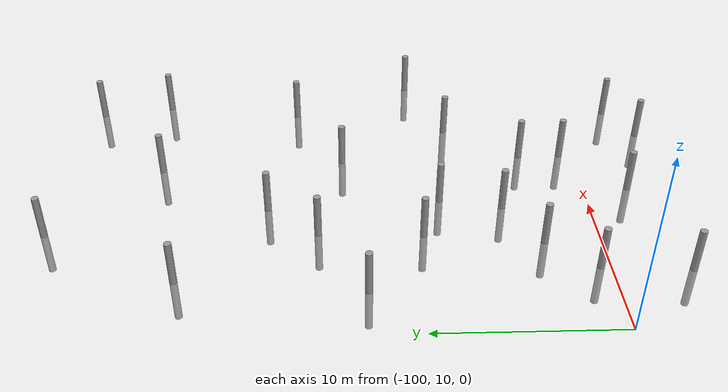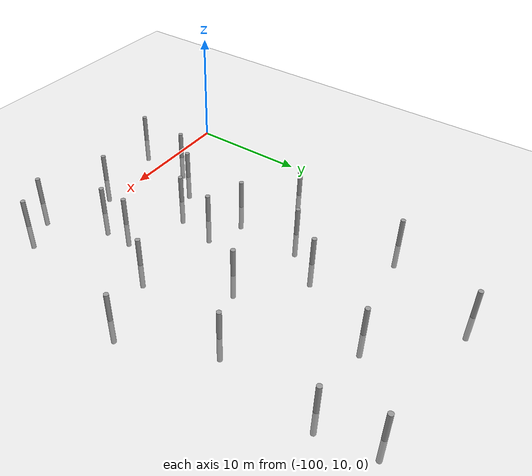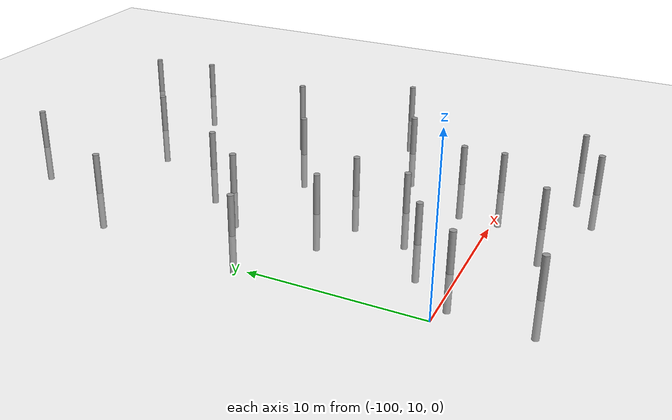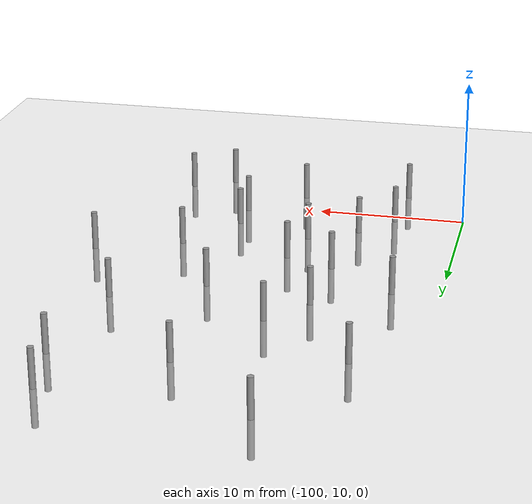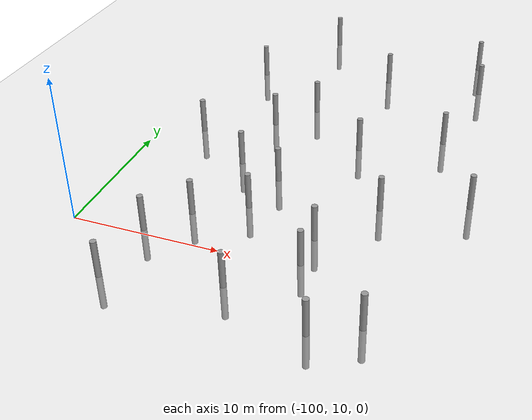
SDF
<sdf version="1.6">
 <world name="default">
  <model name="ground_plane">
   <static>1</static>
   <link name="link">
    <collision name="collision">
     <geometry><plane><normal>0 0 1</normal><size>100 100</size></plane></geometry>
     <surface><friction><ode><mu>100</mu><mu2>50</mu2></ode></friction></surface>
    </collision>
    <visual name="visual">
     <cast_shadows>0</cast_shadows>
     <geometry><plane><normal>0 0 1</normal><size>100 100</size></plane></geometry>
     <material>
      <script><uri>file://media/materials/scripts/gazebo.material</uri><name>Gazebo/Grey</name></script>
     </material>
    </visual>
   </link>
  </model>
  <model name="empty_pillars_6">
   <model name="empty_pillar">
    <link name="link">
     <inertial>
      <mass>1</mass>
      <inertia><ixx>0.145833</ixx><ixy>0</ixy><ixz>0</ixz><iyy>0.145833</iyy><iyz>0</iyz><izz>0.125</izz></inertia>
     </inertial>
     <visual name="visual">
      <geometry><cylinder><radius>0.2</radius><length>5</length></cylinder></geometry>
      <material>
       <script><name>Gazebo/Grey</name><uri>file://media/materials/scripts/gazebo.material</uri></script>
       <shader type="vertex"><normal_map>__default__</normal_map></shader>
       <ambient>0.3 0.3 0.3 1</ambient>
       <diffuse>0.7 0.7 0.7 1</diffuse>
       <specular>0.01 0.01 0.01 1</specular>
       <emissive>0 0 0 1</emissive>
      </material>
     </visual>
     <collision name="collision">
      <geometry><cylinder><radius>0.05</radius><length>5</length></cylinder></geometry>
      <surface>
       <friction>
        <ode><mu>1</mu><mu2>1</mu2><fdir1>0 0 0</fdir1><slip1>0</slip1><slip2>0</slip2></ode>
        <torsional>
         <coefficient>1</coefficient>
         <patch_radius>0</patch_radius>
         <surface_radius>0</surface_radius>
         <use_patch_radius>1</use_patch_radius>
         <ode><slip>0</slip></ode>
        </torsional>
       </friction>
       <bounce><restitution_coefficient>0</restitution_coefficient><threshold>1e+06</threshold></bounce>
       <contact>
        <collide_without_contact>0</collide_without_contact>
        <collide_without_contact_bitmask>1</collide_without_contact_bitmask>
        <collide_bitmask>1</collide_bitmask>
        <ode>
         <soft_cfm>0</soft_cfm>
         <soft_erp>0.2</soft_erp>
         <kp>1e+13</kp>
         <kd>1</kd>
         <max_vel>0.01</max_vel>
         <min_depth>0</min_depth>
        </ode>
        <bullet>
         <split_impulse>1</split_impulse>
         <split_impulse_penetration_threshold>-0.01</split_impulse_penetration_threshold>
         <soft_cfm>0</soft_cfm>
         <soft_erp>0.2</soft_erp>
         <kp>1e+13</kp>
         <kd>1</kd>
        </bullet>
       </contact>
      </surface>
     </collision>
    </link>
    <static>0</static>
    <pose>-3.84527 -0.717439 0 0 -0 0</pose>
   </model>
   <model name="empty_pillar_clone_12">
    <link name="link">
     <inertial>
      <mass>1</mass>
      <inertia><ixx>0.145833</ixx><ixy>0</ixy><ixz>0</ixz><iyy>0.145833</iyy><iyz>0</iyz><izz>0.125</izz></inertia>
     </inertial>
     <visual name="visual">
      <geometry><cylinder><radius>0.2</radius><length>5</length></cylinder></geometry>
      <material>
       <script><name>Gazebo/Grey</name><uri>file://media/materials/scripts/gazebo.material</uri></script>
       <shader type="vertex"><normal_map>__default__</normal_map></shader>
       <ambient>0.3 0.3 0.3 1</ambient>
       <diffuse>0.7 0.7 0.7 1</diffuse>
       <specular>0.01 0.01 0.01 1</specular>
       <emissive>0 0 0 1</emissive>
      </material>
     </visual>
     <collision name="collision">
      <geometry><cylinder><radius>0.05</radius><length>5</length></cylinder></geometry>
      <surface>
       <friction>
        <ode><mu>1</mu><mu2>1</mu2><fdir1>0 0 0</fdir1><slip1>0</slip1><slip2>0</slip2></ode>
        <torsional>
         <coefficient>1</coefficient>
         <patch_radius>0</patch_radius>
         <surface_radius>0</surface_radius>
         <use_patch_radius>1</use_patch_radius>
         <ode><slip>0</slip></ode>
        </torsional>
       </friction>
       <bounce><restitution_coefficient>0</restitution_coefficient><threshold>1e+06</threshold></bounce>
       <contact>
        <collide_without_contact>0</collide_without_contact>
        <collide_without_contact_bitmask>1</collide_without_contact_bitmask>
        <collide_bitmask>1</collide_bitmask>
        <ode>
         <soft_cfm>0</soft_cfm>
         <soft_erp>0.2</soft_erp>
         <kp>1e+13</kp>
         <kd>1</kd>
         <max_vel>0.01</max_vel>
         <min_depth>0</min_depth>
        </ode>
        <bullet>
         <split_impulse>1</split_impulse>
         <split_impulse_penetration_threshold>-0.01</split_impulse_penetration_threshold>
         <soft_cfm>0</soft_cfm>
         <soft_erp>0.2</soft_erp>
         <kp>1e+13</kp>
         <kd>1</kd>
        </bullet>
       </contact>
      </surface>
     </collision>
    </link>
    <static>0</static>
    <pose>-4.01464 -20.8403 0 0 -0 0</pose>
   </model>
   <model name="empty_pillar_clone_13">
    <link name="link">
     <inertial>
      <mass>1</mass>
      <inertia><ixx>0.145833</ixx><ixy>0</ixy><ixz>0</ixz><iyy>0.145833</iyy><iyz>0</iyz><izz>0.125</izz></inertia>
     </inertial>
     <visual name="visual">
      <geometry><cylinder><radius>0.2</radius><length>5</length></cylinder></geometry>
      <material>
       <script><name>Gazebo/Grey</name><uri>file://media/materials/scripts/gazebo.material</uri></script>
       <shader type="vertex"><normal_map>__default__</normal_map></shader>
       <ambient>0.3 0.3 0.3 1</ambient>
       <diffuse>0.7 0.7 0.7 1</diffuse>
       <specular>0.01 0.01 0.01 1</specular>
       <emissive>0 0 0 1</emissive>
      </material>
     </visual>
     <collision name="collision">
      <geometry><cylinder><radius>0.05</radius><length>5</length></cylinder></geometry>
      <surface>
       <friction>
        <ode><mu>1</mu><mu2>1</mu2><fdir1>0 0 0</fdir1><slip1>0</slip1><slip2>0</slip2></ode>
        <torsional>
         <coefficient>1</coefficient>
         <patch_radius>0</patch_radius>
         <surface_radius>0</surface_radius>
         <use_patch_radius>1</use_patch_radius>
         <ode><slip>0</slip></ode>
        </torsional>
       </friction>
       <bounce><restitution_coefficient>0</restitution_coefficient><threshold>1e+06</threshold></bounce>
       <contact>
        <collide_without_contact>0</collide_without_contact>
        <collide_without_contact_bitmask>1</collide_without_contact_bitmask>
        <collide_bitmask>1</collide_bitmask>
        <ode>
         <soft_cfm>0</soft_cfm>
         <soft_erp>0.2</soft_erp>
         <kp>1e+13</kp>
         <kd>1</kd>
         <max_vel>0.01</max_vel>
         <min_depth>0</min_depth>
        </ode>
        <bullet>
         <split_impulse>1</split_impulse>
         <split_impulse_penetration_threshold>-0.01</split_impulse_penetration_threshold>
         <soft_cfm>0</soft_cfm>
         <soft_erp>0.2</soft_erp>
         <kp>1e+13</kp>
         <kd>1</kd>
        </bullet>
       </contact>
      </surface>
     </collision>
    </link>
    <static>0</static>
    <pose>-9.01464 -14.4259 0 0 -0 0</pose>
   </model>
   <model name="empty_pillar_clone_14">
    <link name="link">
     <inertial>
      <mass>1</mass>
      <inertia><ixx>0.145833</ixx><ixy>0</ixy><ixz>0</ixz><iyy>0.145833</iyy><iyz>0</iyz><izz>0.125</izz></inertia>
     </inertial>
     <visual name="visual">
      <geometry><cylinder><radius>0.2</radius><length>5</length></cylinder></geometry>
      <material>
       <script><name>Gazebo/Grey</name><uri>file://media/materials/scripts/gazebo.material</uri></script>
       <shader type="vertex"><normal_map>__default__</normal_map></shader>
       <ambient>0.3 0.3 0.3 1</ambient>
       <diffuse>0.7 0.7 0.7 1</diffuse>
       <specular>0.01 0.01 0.01 1</specular>
       <emissive>0 0 0 1</emissive>
      </material>
     </visual>
     <collision name="collision">
      <geometry><cylinder><radius>0.05</radius><length>5</length></cylinder></geometry>
      <surface>
       <friction>
        <ode><mu>1</mu><mu2>1</mu2><fdir1>0 0 0</fdir1><slip1>0</slip1><slip2>0</slip2></ode>
        <torsional>
         <coefficient>1</coefficient>
         <patch_radius>0</patch_radius>
         <surface_radius>0</surface_radius>
         <use_patch_radius>1</use_patch_radius>
         <ode><slip>0</slip></ode>
        </torsional>
       </friction>
       <bounce><restitution_coefficient>0</restitution_coefficient><threshold>1e+06</threshold></bounce>
       <contact>
        <collide_without_contact>0</collide_without_contact>
        <collide_without_contact_bitmask>1</collide_without_contact_bitmask>
        <collide_bitmask>1</collide_bitmask>
        <ode>
         <soft_cfm>0</soft_cfm>
         <soft_erp>0.2</soft_erp>
         <kp>1e+13</kp>
         <kd>1</kd>
         <max_vel>0.01</max_vel>
         <min_depth>0</min_depth>
        </ode>
        <bullet>
         <split_impulse>1</split_impulse>
         <split_impulse_penetration_threshold>-0.01</split_impulse_penetration_threshold>
         <soft_cfm>0</soft_cfm>
         <soft_erp>0.2</soft_erp>
         <kp>1e+13</kp>
         <kd>1</kd>
        </bullet>
       </contact>
      </surface>
     </collision>
    </link>
    <static>0</static>
    <pose>-14.0146 0.646152 0 0 -0 0</pose>
   </model>
   <model name="empty_pillar_clone_15">
    <link name="link">
     <inertial>
      <mass>1</mass>
      <inertia><ixx>0.145833</ixx><ixy>0</ixy><ixz>0</ixz><iyy>0.145833</iyy><iyz>0</iyz><izz>0.125</izz></inertia>
     </inertial>
     <visual name="visual">
      <geometry><cylinder><radius>0.2</radius><length>5</length></cylinder></geometry>
      <material>
       <script><name>Gazebo/Grey</name><uri>file://media/materials/scripts/gazebo.material</uri></script>
       <shader type="vertex"><normal_map>__default__</normal_map></shader>
       <ambient>0.3 0.3 0.3 1</ambient>
       <diffuse>0.7 0.7 0.7 1</diffuse>
       <specular>0.01 0.01 0.01 1</specular>
       <emissive>0 0 0 1</emissive>
      </material>
     </visual>
     <collision name="collision">
      <geometry><cylinder><radius>0.05</radius><length>5</length></cylinder></geometry>
      <surface>
       <friction>
        <ode><mu>1</mu><mu2>1</mu2><fdir1>0 0 0</fdir1><slip1>0</slip1><slip2>0</slip2></ode>
        <torsional>
         <coefficient>1</coefficient>
         <patch_radius>0</patch_radius>
         <surface_radius>0</surface_radius>
         <use_patch_radius>1</use_patch_radius>
         <ode><slip>0</slip></ode>
        </torsional>
       </friction>
       <bounce><restitution_coefficient>0</restitution_coefficient><threshold>1e+06</threshold></bounce>
       <contact>
        <collide_without_contact>0</collide_without_contact>
        <collide_without_contact_bitmask>1</collide_without_contact_bitmask>
        <collide_bitmask>1</collide_bitmask>
        <ode>
         <soft_cfm>0</soft_cfm>
         <soft_erp>0.2</soft_erp>
         <kp>1e+13</kp>
         <kd>1</kd>
         <max_vel>0.01</max_vel>
         <min_depth>0</min_depth>
        </ode>
        <bullet>
         <split_impulse>1</split_impulse>
         <split_impulse_penetration_threshold>-0.01</split_impulse_penetration_threshold>
         <soft_cfm>0</soft_cfm>
         <soft_erp>0.2</soft_erp>
         <kp>1e+13</kp>
         <kd>1</kd>
        </bullet>
       </contact>
      </surface>
     </collision>
    </link>
    <static>0</static>
    <pose>-9.37193 -3.58732 0 0 -0 0</pose>
   </model>
   <model name="empty_pillar_clone_17">
    <link name="link">
     <inertial>
      <mass>1</mass>
      <inertia><ixx>0.145833</ixx><ixy>0</ixy><ixz>0</ixz><iyy>0.145833</iyy><iyz>0</iyz><izz>0.125</izz></inertia>
     </inertial>
     <visual name="visual">
      <geometry><cylinder><radius>0.2</radius><length>5</length></cylinder></geometry>
      <material>
       <script><name>Gazebo/Grey</name><uri>file://media/materials/scripts/gazebo.material</uri></script>
       <shader type="vertex"><normal_map>__default__</normal_map></shader>
       <ambient>0.3 0.3 0.3 1</ambient>
       <diffuse>0.7 0.7 0.7 1</diffuse>
       <specular>0.01 0.01 0.01 1</specular>
       <emissive>0 0 0 1</emissive>
      </material>
     </visual>
     <collision name="collision">
      <geometry><cylinder><radius>0.05</radius><length>5</length></cylinder></geometry>
      <surface>
       <friction>
        <ode><mu>1</mu><mu2>1</mu2><fdir1>0 0 0</fdir1><slip1>0</slip1><slip2>0</slip2></ode>
        <torsional>
         <coefficient>1</coefficient>
         <patch_radius>0</patch_radius>
         <surface_radius>0</surface_radius>
         <use_patch_radius>1</use_patch_radius>
         <ode><slip>0</slip></ode>
        </torsional>
       </friction>
       <bounce><restitution_coefficient>0</restitution_coefficient><threshold>1e+06</threshold></bounce>
       <contact>
        <collide_without_contact>0</collide_without_contact>
        <collide_without_contact_bitmask>1</collide_without_contact_bitmask>
        <collide_bitmask>1</collide_bitmask>
        <ode>
         <soft_cfm>0</soft_cfm>
         <soft_erp>0.2</soft_erp>
         <kp>1e+13</kp>
         <kd>1</kd>
         <max_vel>0.01</max_vel>
         <min_depth>0</min_depth>
        </ode>
        <bullet>
         <split_impulse>1</split_impulse>
         <split_impulse_penetration_threshold>-0.01</split_impulse_penetration_threshold>
         <soft_cfm>0</soft_cfm>
         <soft_erp>0.2</soft_erp>
         <kp>1e+13</kp>
         <kd>1</kd>
        </bullet>
       </contact>
      </surface>
     </collision>
    </link>
    <static>0</static>
    <pose>-16.0449 12.755 0 0 -0 0</pose>
   </model>
   <model name="empty_pillar_clone_18">
    <link name="link">
     <inertial>
      <mass>1</mass>
      <inertia><ixx>0.145833</ixx><ixy>0</ixy><ixz>0</ixz><iyy>0.145833</iyy><iyz>0</iyz><izz>0.125</izz></inertia>
     </inertial>
     <visual name="visual">
      <geometry><cylinder><radius>0.2</radius><length>5</length></cylinder></geometry>
      <material>
       <script><name>Gazebo/Grey</name><uri>file://media/materials/scripts/gazebo.material</uri></script>
       <shader type="vertex"><normal_map>__default__</normal_map></shader>
       <ambient>0.3 0.3 0.3 1</ambient>
       <diffuse>0.7 0.7 0.7 1</diffuse>
       <specular>0.01 0.01 0.01 1</specular>
       <emissive>0 0 0 1</emissive>
      </material>
     </visual>
     <collision name="collision">
      <geometry><cylinder><radius>0.05</radius><length>5</length></cylinder></geometry>
      <surface>
       <friction>
        <ode><mu>1</mu><mu2>1</mu2><fdir1>0 0 0</fdir1><slip1>0</slip1><slip2>0</slip2></ode>
        <torsional>
         <coefficient>1</coefficient>
         <patch_radius>0</patch_radius>
         <surface_radius>0</surface_radius>
         <use_patch_radius>1</use_patch_radius>
         <ode><slip>0</slip></ode>
        </torsional>
       </friction>
       <bounce><restitution_coefficient>0</restitution_coefficient><threshold>1e+06</threshold></bounce>
       <contact>
        <collide_without_contact>0</collide_without_contact>
        <collide_without_contact_bitmask>1</collide_without_contact_bitmask>
        <collide_bitmask>1</collide_bitmask>
        <ode>
         <soft_cfm>0</soft_cfm>
         <soft_erp>0.2</soft_erp>
         <kp>1e+13</kp>
         <kd>1</kd>
         <max_vel>0.01</max_vel>
         <min_depth>0</min_depth>
        </ode>
        <bullet>
         <split_impulse>1</split_impulse>
         <split_impulse_penetration_threshold>-0.01</split_impulse_penetration_threshold>
         <soft_cfm>0</soft_cfm>
         <soft_erp>0.2</soft_erp>
         <kp>1e+13</kp>
         <kd>1</kd>
        </bullet>
       </contact>
      </surface>
     </collision>
    </link>
    <static>0</static>
    <pose>-20.0146 5.15966 0 0 -0 0</pose>
   </model>
   <model name="empty_pillar_clone_19">
    <link name="link">
     <inertial>
      <mass>1</mass>
      <inertia><ixx>0.145833</ixx><ixy>0</ixy><ixz>0</ixz><iyy>0.145833</iyy><iyz>0</iyz><izz>0.125</izz></inertia>
     </inertial>
     <visual name="visual">
      <geometry><cylinder><radius>0.2</radius><length>5</length></cylinder></geometry>
      <material>
       <script><name>Gazebo/Grey</name><uri>file://media/materials/scripts/gazebo.material</uri></script>
       <shader type="vertex"><normal_map>__default__</normal_map></shader>
       <ambient>0.3 0.3 0.3 1</ambient>
       <diffuse>0.7 0.7 0.7 1</diffuse>
       <specular>0.01 0.01 0.01 1</specular>
       <emissive>0 0 0 1</emissive>
      </material>
     </visual>
     <collision name="collision">
      <geometry><cylinder><radius>0.05</radius><length>5</length></cylinder></geometry>
      <surface>
       <friction>
        <ode><mu>1</mu><mu2>1</mu2><fdir1>0 0 0</fdir1><slip1>0</slip1><slip2>0</slip2></ode>
        <torsional>
         <coefficient>1</coefficient>
         <patch_radius>0</patch_radius>
         <surface_radius>0</surface_radius>
         <use_patch_radius>1</use_patch_radius>
         <ode><slip>0</slip></ode>
        </torsional>
       </friction>
       <bounce><restitution_coefficient>0</restitution_coefficient><threshold>1e+06</threshold></bounce>
       <contact>
        <collide_without_contact>0</collide_without_contact>
        <collide_without_contact_bitmask>1</collide_without_contact_bitmask>
        <collide_bitmask>1</collide_bitmask>
        <ode>
         <soft_cfm>0</soft_cfm>
         <soft_erp>0.2</soft_erp>
         <kp>1e+13</kp>
         <kd>1</kd>
         <max_vel>0.01</max_vel>
         <min_depth>0</min_depth>
        </ode>
        <bullet>
         <split_impulse>1</split_impulse>
         <split_impulse_penetration_threshold>-0.01</split_impulse_penetration_threshold>
         <soft_cfm>0</soft_cfm>
         <soft_erp>0.2</soft_erp>
         <kp>1e+13</kp>
         <kd>1</kd>
        </bullet>
       </contact>
      </surface>
     </collision>
    </link>
    <static>0</static>
    <pose>-10.0146 7.15966 0 0 -0 0</pose>
   </model>
   <model name="empty_pillar_clone_24">
    <link name="link">
     <inertial>
      <mass>1</mass>
      <inertia><ixx>0.145833</ixx><ixy>0</ixy><ixz>0</ixz><iyy>0.145833</iyy><iyz>0</iyz><izz>0.125</izz></inertia>
     </inertial>
     <visual name="visual">
      <geometry><cylinder><radius>0.2</radius><length>5</length></cylinder></geometry>
      <material>
       <script><name>Gazebo/Grey</name><uri>file://media/materials/scripts/gazebo.material</uri></script>
       <shader type="vertex"><normal_map>__default__</normal_map></shader>
       <ambient>0.3 0.3 0.3 1</ambient>
       <diffuse>0.7 0.7 0.7 1</diffuse>
       <specular>0.01 0.01 0.01 1</specular>
       <emissive>0 0 0 1</emissive>
      </material>
     </visual>
     <collision name="collision">
      <geometry><cylinder><radius>0.05</radius><length>5</length></cylinder></geometry>
      <surface>
       <friction>
        <ode><mu>1</mu><mu2>1</mu2><fdir1>0 0 0</fdir1><slip1>0</slip1><slip2>0</slip2></ode>
        <torsional>
         <coefficient>1</coefficient>
         <patch_radius>0</patch_radius>
         <surface_radius>0</surface_radius>
         <use_patch_radius>1</use_patch_radius>
         <ode><slip>0</slip></ode>
        </torsional>
       </friction>
       <bounce><restitution_coefficient>0</restitution_coefficient><threshold>1e+06</threshold></bounce>
       <contact>
        <collide_without_contact>0</collide_without_contact>
        <collide_without_contact_bitmask>1</collide_without_contact_bitmask>
        <collide_bitmask>1</collide_bitmask>
        <ode>
         <soft_cfm>0</soft_cfm>
         <soft_erp>0.2</soft_erp>
         <kp>1e+13</kp>
         <kd>1</kd>
         <max_vel>0.01</max_vel>
         <min_depth>0</min_depth>
        </ode>
        <bullet>
         <split_impulse>1</split_impulse>
         <split_impulse_penetration_threshold>-0.01</split_impulse_penetration_threshold>
         <soft_cfm>0</soft_cfm>
         <soft_erp>0.2</soft_erp>
         <kp>1e+13</kp>
         <kd>1</kd>
        </bullet>
       </contact>
      </surface>
     </collision>
    </link>
    <static>0</static>
    <pose>-3.46957 11.9413 0 0 -0 0</pose>
   </model>
   <model name="empty_pillar_clone_35">
    <link name="link">
     <inertial>
      <mass>1</mass>
      <inertia><ixx>0.145833</ixx><ixy>0</ixy><ixz>0</ixz><iyy>0.145833</iyy><iyz>0</iyz><izz>0.125</izz></inertia>
     </inertial>
     <visual name="visual">
      <geometry><cylinder><radius>0.2</radius><length>5</length></cylinder></geometry>
      <material>
       <script><name>Gazebo/Grey</name><uri>file://media/materials/scripts/gazebo.material</uri></script>
       <shader type="vertex"><normal_map>__default__</normal_map></shader>
       <ambient>0.3 0.3 0.3 1</ambient>
       <diffuse>0.7 0.7 0.7 1</diffuse>
       <specular>0.01 0.01 0.01 1</specular>
       <emissive>0 0 0 1</emissive>
      </material>
     </visual>
     <collision name="collision">
      <geometry><cylinder><radius>0.05</radius><length>5</length></cylinder></geometry>
      <surface>
       <friction>
        <ode><mu>1</mu><mu2>1</mu2><fdir1>0 0 0</fdir1><slip1>0</slip1><slip2>0</slip2></ode>
        <torsional>
         <coefficient>1</coefficient>
         <patch_radius>0</patch_radius>
         <surface_radius>0</surface_radius>
         <use_patch_radius>1</use_patch_radius>
         <ode><slip>0</slip></ode>
        </torsional>
       </friction>
       <bounce><restitution_coefficient>0</restitution_coefficient><threshold>1e+06</threshold></bounce>
       <contact>
        <collide_without_contact>0</collide_without_contact>
        <collide_without_contact_bitmask>1</collide_without_contact_bitmask>
        <collide_bitmask>1</collide_bitmask>
        <ode>
         <soft_cfm>0</soft_cfm>
         <soft_erp>0.2</soft_erp>
         <kp>1e+13</kp>
         <kd>1</kd>
         <max_vel>0.01</max_vel>
         <min_depth>0</min_depth>
        </ode>
        <bullet>
         <split_impulse>1</split_impulse>
         <split_impulse_penetration_threshold>-0.01</split_impulse_penetration_threshold>
         <soft_cfm>0</soft_cfm>
         <soft_erp>0.2</soft_erp>
         <kp>1e+13</kp>
         <kd>1</kd>
        </bullet>
       </contact>
      </surface>
     </collision>
    </link>
    <static>0</static>
    <pose>-19.4431 -17.0281 0 0 -0 0</pose>
   </model>
   <model name="empty_pillar_clone_36">
    <link name="link">
     <inertial>
      <mass>1</mass>
      <inertia><ixx>0.145833</ixx><ixy>0</ixy><ixz>0</ixz><iyy>0.145833</iyy><iyz>0</iyz><izz>0.125</izz></inertia>
     </inertial>
     <visual name="visual">
      <geometry><cylinder><radius>0.2</radius><length>5</length></cylinder></geometry>
      <material>
       <script><name>Gazebo/Grey</name><uri>file://media/materials/scripts/gazebo.material</uri></script>
       <shader type="vertex"><normal_map>__default__</normal_map></shader>
       <ambient>0.3 0.3 0.3 1</ambient>
       <diffuse>0.7 0.7 0.7 1</diffuse>
       <specular>0.01 0.01 0.01 1</specular>
       <emissive>0 0 0 1</emissive>
      </material>
     </visual>
     <collision name="collision">
      <geometry><cylinder><radius>0.05</radius><length>5</length></cylinder></geometry>
      <surface>
       <friction>
        <ode><mu>1</mu><mu2>1</mu2><fdir1>0 0 0</fdir1><slip1>0</slip1><slip2>0</slip2></ode>
        <torsional>
         <coefficient>1</coefficient>
         <patch_radius>0</patch_radius>
         <surface_radius>0</surface_radius>
         <use_patch_radius>1</use_patch_radius>
         <ode><slip>0</slip></ode>
        </torsional>
       </friction>
       <bounce><restitution_coefficient>0</restitution_coefficient><threshold>1e+06</threshold></bounce>
       <contact>
        <collide_without_contact>0</collide_without_contact>
        <collide_without_contact_bitmask>1</collide_without_contact_bitmask>
        <collide_bitmask>1</collide_bitmask>
        <ode>
         <soft_cfm>0</soft_cfm>
         <soft_erp>0.2</soft_erp>
         <kp>1e+13</kp>
         <kd>1</kd>
         <max_vel>0.01</max_vel>
         <min_depth>0</min_depth>
        </ode>
        <bullet>
         <split_impulse>1</split_impulse>
         <split_impulse_penetration_threshold>-0.01</split_impulse_penetration_threshold>
         <soft_cfm>0</soft_cfm>
         <soft_erp>0.2</soft_erp>
         <kp>1e+13</kp>
         <kd>1</kd>
        </bullet>
       </contact>
      </surface>
     </collision>
    </link>
    <static>0</static>
    <pose>-21.0146 -4.84034 0 0 -0 0</pose>
   </model>
   <model name="empty_pillar_clone_37">
    <link name="link">
     <inertial>
      <mass>1</mass>
      <inertia><ixx>0.145833</ixx><ixy>0</ixy><ixz>0</ixz><iyy>0.145833</iyy><iyz>0</iyz><izz>0.125</izz></inertia>
     </inertial>
     <visual name="visual">
      <geometry><cylinder><radius>0.2</radius><length>5</length></cylinder></geometry>
      <material>
       <script><name>Gazebo/Grey</name><uri>file://media/materials/scripts/gazebo.material</uri></script>
       <shader type="vertex"><normal_map>__default__</normal_map></shader>
       <ambient>0.3 0.3 0.3 1</ambient>
       <diffuse>0.7 0.7 0.7 1</diffuse>
       <specular>0.01 0.01 0.01 1</specular>
       <emissive>0 0 0 1</emissive>
      </material>
     </visual>
     <collision name="collision">
      <geometry><cylinder><radius>0.05</radius><length>5</length></cylinder></geometry>
      <surface>
       <friction>
        <ode><mu>1</mu><mu2>1</mu2><fdir1>0 0 0</fdir1><slip1>0</slip1><slip2>0</slip2></ode>
        <torsional>
         <coefficient>1</coefficient>
         <patch_radius>0</patch_radius>
         <surface_radius>0</surface_radius>
         <use_patch_radius>1</use_patch_radius>
         <ode><slip>0</slip></ode>
        </torsional>
       </friction>
       <bounce><restitution_coefficient>0</restitution_coefficient><threshold>1e+06</threshold></bounce>
       <contact>
        <collide_without_contact>0</collide_without_contact>
        <collide_without_contact_bitmask>1</collide_without_contact_bitmask>
        <collide_bitmask>1</collide_bitmask>
        <ode>
         <soft_cfm>0</soft_cfm>
         <soft_erp>0.2</soft_erp>
         <kp>1e+13</kp>
         <kd>1</kd>
         <max_vel>0.01</max_vel>
         <min_depth>0</min_depth>
        </ode>
        <bullet>
         <split_impulse>1</split_impulse>
         <split_impulse_penetration_threshold>-0.01</split_impulse_penetration_threshold>
         <soft_cfm>0</soft_cfm>
         <soft_erp>0.2</soft_erp>
         <kp>1e+13</kp>
         <kd>1</kd>
        </bullet>
       </contact>
      </surface>
     </collision>
    </link>
    <static>0</static>
    <pose>-16.6035 -7.98282 0 0 -0 0</pose>
   </model>
   <model name="empty_pillar_clone_38">
    <link name="link">
     <inertial>
      <mass>1</mass>
      <inertia><ixx>0.145833</ixx><ixy>0</ixy><ixz>0</ixz><iyy>0.145833</iyy><iyz>0</iyz><izz>0.125</izz></inertia>
     </inertial>
     <visual name="visual">
      <geometry><cylinder><radius>0.2</radius><length>5</length></cylinder></geometry>
      <material>
       <script><name>Gazebo/Grey</name><uri>file://media/materials/scripts/gazebo.material</uri></script>
       <shader type="vertex"><normal_map>__default__</normal_map></shader>
       <ambient>0.3 0.3 0.3 1</ambient>
       <diffuse>0.7 0.7 0.7 1</diffuse>
       <specular>0.01 0.01 0.01 1</specular>
       <emissive>0 0 0 1</emissive>
      </material>
     </visual>
     <collision name="collision">
      <geometry><cylinder><radius>0.05</radius><length>5</length></cylinder></geometry>
      <surface>
       <friction>
        <ode><mu>1</mu><mu2>1</mu2><fdir1>0 0 0</fdir1><slip1>0</slip1><slip2>0</slip2></ode>
        <torsional>
         <coefficient>1</coefficient>
         <patch_radius>0</patch_radius>
         <surface_radius>0</surface_radius>
         <use_patch_radius>1</use_patch_radius>
         <ode><slip>0</slip></ode>
        </torsional>
       </friction>
       <bounce><restitution_coefficient>0</restitution_coefficient><threshold>1e+06</threshold></bounce>
       <contact>
        <collide_without_contact>0</collide_without_contact>
        <collide_without_contact_bitmask>1</collide_without_contact_bitmask>
        <collide_bitmask>1</collide_bitmask>
        <ode>
         <soft_cfm>0</soft_cfm>
         <soft_erp>0.2</soft_erp>
         <kp>1e+13</kp>
         <kd>1</kd>
         <max_vel>0.01</max_vel>
         <min_depth>0</min_depth>
        </ode>
        <bullet>
         <split_impulse>1</split_impulse>
         <split_impulse_penetration_threshold>-0.01</split_impulse_penetration_threshold>
         <soft_cfm>0</soft_cfm>
         <soft_erp>0.2</soft_erp>
         <kp>1e+13</kp>
         <kd>1</kd>
        </bullet>
       </contact>
      </surface>
     </collision>
    </link>
    <static>0</static>
    <pose>-16.33 -2.21607 0 0 -0 0</pose>
   </model>
   <model name="empty_pillar_clone_39">
    <link name="link">
     <inertial>
      <mass>1</mass>
      <inertia><ixx>0.145833</ixx><ixy>0</ixy><ixz>0</ixz><iyy>0.145833</iyy><iyz>0</iyz><izz>0.125</izz></inertia>
     </inertial>
     <visual name="visual">
      <geometry><cylinder><radius>0.2</radius><length>5</length></cylinder></geometry>
      <material>
       <script><name>Gazebo/Grey</name><uri>file://media/materials/scripts/gazebo.material</uri></script>
       <shader type="vertex"><normal_map>__default__</normal_map></shader>
       <ambient>0.3 0.3 0.3 1</ambient>
       <diffuse>0.7 0.7 0.7 1</diffuse>
       <specular>0.01 0.01 0.01 1</specular>
       <emissive>0 0 0 1</emissive>
      </material>
     </visual>
     <collision name="collision">
      <geometry><cylinder><radius>0.05</radius><length>5</length></cylinder></geometry>
      <surface>
       <friction>
        <ode><mu>1</mu><mu2>1</mu2><fdir1>0 0 0</fdir1><slip1>0</slip1><slip2>0</slip2></ode>
        <torsional>
         <coefficient>1</coefficient>
         <patch_radius>0</patch_radius>
         <surface_radius>0</surface_radius>
         <use_patch_radius>1</use_patch_radius>
         <ode><slip>0</slip></ode>
        </torsional>
       </friction>
       <bounce><restitution_coefficient>0</restitution_coefficient><threshold>1e+06</threshold></bounce>
       <contact>
        <collide_without_contact>0</collide_without_contact>
        <collide_without_contact_bitmask>1</collide_without_contact_bitmask>
        <collide_bitmask>1</collide_bitmask>
        <ode>
         <soft_cfm>0</soft_cfm>
         <soft_erp>0.2</soft_erp>
         <kp>1e+13</kp>
         <kd>1</kd>
         <max_vel>0.01</max_vel>
         <min_depth>0</min_depth>
        </ode>
        <bullet>
         <split_impulse>1</split_impulse>
         <split_impulse_penetration_threshold>-0.01</split_impulse_penetration_threshold>
         <soft_cfm>0</soft_cfm>
         <soft_erp>0.2</soft_erp>
         <kp>1e+13</kp>
         <kd>1</kd>
        </bullet>
       </contact>
      </surface>
     </collision>
    </link>
    <static>0</static>
    <pose>-13.4361 -9.12638 0 0 -0 0</pose>
   </model>
   <model name="empty_pillar_clone_40">
    <link name="link">
     <inertial>
      <mass>1</mass>
      <inertia><ixx>0.145833</ixx><ixy>0</ixy><ixz>0</ixz><iyy>0.145833</iyy><iyz>0</iyz><izz>0.125</izz></inertia>
     </inertial>
     <visual name="visual">
      <geometry><cylinder><radius>0.2</radius><length>5</length></cylinder></geometry>
      <material>
       <script><name>Gazebo/Grey</name><uri>file://media/materials/scripts/gazebo.material</uri></script>
       <shader type="vertex"><normal_map>__default__</normal_map></shader>
       <ambient>0.3 0.3 0.3 1</ambient>
       <diffuse>0.7 0.7 0.7 1</diffuse>
       <specular>0.01 0.01 0.01 1</specular>
       <emissive>0 0 0 1</emissive>
      </material>
     </visual>
     <collision name="collision">
      <geometry><cylinder><radius>0.05</radius><length>5</length></cylinder></geometry>
      <surface>
       <friction>
        <ode><mu>1</mu><mu2>1</mu2><fdir1>0 0 0</fdir1><slip1>0</slip1><slip2>0</slip2></ode>
        <torsional>
         <coefficient>1</coefficient>
         <patch_radius>0</patch_radius>
         <surface_radius>0</surface_radius>
         <use_patch_radius>1</use_patch_radius>
         <ode><slip>0</slip></ode>
        </torsional>
       </friction>
       <bounce><restitution_coefficient>0</restitution_coefficient><threshold>1e+06</threshold></bounce>
       <contact>
        <collide_without_contact>0</collide_without_contact>
        <collide_without_contact_bitmask>1</collide_without_contact_bitmask>
        <collide_bitmask>1</collide_bitmask>
        <ode>
         <soft_cfm>0</soft_cfm>
         <soft_erp>0.2</soft_erp>
         <kp>1e+13</kp>
         <kd>1</kd>
         <max_vel>0.01</max_vel>
         <min_depth>0</min_depth>
        </ode>
        <bullet>
         <split_impulse>1</split_impulse>
         <split_impulse_penetration_threshold>-0.01</split_impulse_penetration_threshold>
         <soft_cfm>0</soft_cfm>
         <soft_erp>0.2</soft_erp>
         <kp>1e+13</kp>
         <kd>1</kd>
        </bullet>
       </contact>
      </surface>
     </collision>
    </link>
    <static>0</static>
    <pose>-17.318 -14.4851 0 0 -0 0</pose>
   </model>
   <model name="empty_pillar_clone_41">
    <link name="link">
     <inertial>
      <mass>1</mass>
      <inertia><ixx>0.145833</ixx><ixy>0</ixy><ixz>0</ixz><iyy>0.145833</iyy><iyz>0</iyz><izz>0.125</izz></inertia>
     </inertial>
     <visual name="visual">
      <geometry><cylinder><radius>0.2</radius><length>5</length></cylinder></geometry>
      <material>
       <script><name>Gazebo/Grey</name><uri>file://media/materials/scripts/gazebo.material</uri></script>
       <shader type="vertex"><normal_map>__default__</normal_map></shader>
       <ambient>0.3 0.3 0.3 1</ambient>
       <diffuse>0.7 0.7 0.7 1</diffuse>
       <specular>0.01 0.01 0.01 1</specular>
       <emissive>0 0 0 1</emissive>
      </material>
     </visual>
     <collision name="collision">
      <geometry><cylinder><radius>0.05</radius><length>5</length></cylinder></geometry>
      <surface>
       <friction>
        <ode><mu>1</mu><mu2>1</mu2><fdir1>0 0 0</fdir1><slip1>0</slip1><slip2>0</slip2></ode>
        <torsional>
         <coefficient>1</coefficient>
         <patch_radius>0</patch_radius>
         <surface_radius>0</surface_radius>
         <use_patch_radius>1</use_patch_radius>
         <ode><slip>0</slip></ode>
        </torsional>
       </friction>
       <bounce><restitution_coefficient>0</restitution_coefficient><threshold>1e+06</threshold></bounce>
       <contact>
        <collide_without_contact>0</collide_without_contact>
        <collide_without_contact_bitmask>1</collide_without_contact_bitmask>
        <collide_bitmask>1</collide_bitmask>
        <ode>
         <soft_cfm>0</soft_cfm>
         <soft_erp>0.2</soft_erp>
         <kp>1e+13</kp>
         <kd>1</kd>
         <max_vel>0.01</max_vel>
         <min_depth>0</min_depth>
        </ode>
        <bullet>
         <split_impulse>1</split_impulse>
         <split_impulse_penetration_threshold>-0.01</split_impulse_penetration_threshold>
         <soft_cfm>0</soft_cfm>
         <soft_erp>0.2</soft_erp>
         <kp>1e+13</kp>
         <kd>1</kd>
        </bullet>
       </contact>
      </surface>
     </collision>
    </link>
    <static>0</static>
    <pose>-14.1448 -12.6326 0 0 -0 0</pose>
   </model>
   <model name="empty_pillar_clone_42">
    <link name="link">
     <inertial>
      <mass>1</mass>
      <inertia><ixx>0.145833</ixx><ixy>0</ixy><ixz>0</ixz><iyy>0.145833</iyy><iyz>0</iyz><izz>0.125</izz></inertia>
     </inertial>
     <visual name="visual">
      <geometry><cylinder><radius>0.2</radius><length>5</length></cylinder></geometry>
      <material>
       <script><name>Gazebo/Grey</name><uri>file://media/materials/scripts/gazebo.material</uri></script>
       <shader type="vertex"><normal_map>__default__</normal_map></shader>
       <ambient>0.3 0.3 0.3 1</ambient>
       <diffuse>0.7 0.7 0.7 1</diffuse>
       <specular>0.01 0.01 0.01 1</specular>
       <emissive>0 0 0 1</emissive>
      </material>
     </visual>
     <collision name="collision">
      <geometry><cylinder><radius>0.05</radius><length>5</length></cylinder></geometry>
      <surface>
       <friction>
        <ode><mu>1</mu><mu2>1</mu2><fdir1>0 0 0</fdir1><slip1>0</slip1><slip2>0</slip2></ode>
        <torsional>
         <coefficient>1</coefficient>
         <patch_radius>0</patch_radius>
         <surface_radius>0</surface_radius>
         <use_patch_radius>1</use_patch_radius>
         <ode><slip>0</slip></ode>
        </torsional>
       </friction>
       <bounce><restitution_coefficient>0</restitution_coefficient><threshold>1e+06</threshold></bounce>
       <contact>
        <collide_without_contact>0</collide_without_contact>
        <collide_without_contact_bitmask>1</collide_without_contact_bitmask>
        <collide_bitmask>1</collide_bitmask>
        <ode>
         <soft_cfm>0</soft_cfm>
         <soft_erp>0.2</soft_erp>
         <kp>1e+13</kp>
         <kd>1</kd>
         <max_vel>0.01</max_vel>
         <min_depth>0</min_depth>
        </ode>
        <bullet>
         <split_impulse>1</split_impulse>
         <split_impulse_penetration_threshold>-0.01</split_impulse_penetration_threshold>
         <soft_cfm>0</soft_cfm>
         <soft_erp>0.2</soft_erp>
         <kp>1e+13</kp>
         <kd>1</kd>
        </bullet>
       </contact>
      </surface>
     </collision>
    </link>
    <static>0</static>
    <pose>-12.5409 -20.2416 0 0 -0 0</pose>
   </model>
   <model name="empty_pillar_clone_43">
    <link name="link">
     <inertial>
      <mass>1</mass>
      <inertia><ixx>0.145833</ixx><ixy>0</ixy><ixz>0</ixz><iyy>0.145833</iyy><iyz>0</iyz><izz>0.125</izz></inertia>
     </inertial>
     <visual name="visual">
      <geometry><cylinder><radius>0.2</radius><length>5</length></cylinder></geometry>
      <material>
       <script><name>Gazebo/Grey</name><uri>file://media/materials/scripts/gazebo.material</uri></script>
       <shader type="vertex"><normal_map>__default__</normal_map></shader>
       <ambient>0.3 0.3 0.3 1</ambient>
       <diffuse>0.7 0.7 0.7 1</diffuse>
       <specular>0.01 0.01 0.01 1</specular>
       <emissive>0 0 0 1</emissive>
      </material>
     </visual>
     <collision name="collision">
      <geometry><cylinder><radius>0.05</radius><length>5</length></cylinder></geometry>
      <surface>
       <friction>
        <ode><mu>1</mu><mu2>1</mu2><fdir1>0 0 0</fdir1><slip1>0</slip1><slip2>0</slip2></ode>
        <torsional>
         <coefficient>1</coefficient>
         <patch_radius>0</patch_radius>
         <surface_radius>0</surface_radius>
         <use_patch_radius>1</use_patch_radius>
         <ode><slip>0</slip></ode>
        </torsional>
       </friction>
       <bounce><restitution_coefficient>0</restitution_coefficient><threshold>1e+06</threshold></bounce>
       <contact>
        <collide_without_contact>0</collide_without_contact>
        <collide_without_contact_bitmask>1</collide_without_contact_bitmask>
        <collide_bitmask>1</collide_bitmask>
        <ode>
         <soft_cfm>0</soft_cfm>
         <soft_erp>0.2</soft_erp>
         <kp>1e+13</kp>
         <kd>1</kd>
         <max_vel>0.01</max_vel>
         <min_depth>0</min_depth>
        </ode>
        <bullet>
         <split_impulse>1</split_impulse>
         <split_impulse_penetration_threshold>-0.01</split_impulse_penetration_threshold>
         <soft_cfm>0</soft_cfm>
         <soft_erp>0.2</soft_erp>
         <kp>1e+13</kp>
         <kd>1</kd>
        </bullet>
       </contact>
      </surface>
     </collision>
    </link>
    <static>0</static>
    <pose>-19.7613 -21.8307 0 0 -0 0</pose>
   </model>
   <model name="empty_pillar_clone_44">
    <link name="link">
     <inertial>
      <mass>1</mass>
      <inertia><ixx>0.145833</ixx><ixy>0</ixy><ixz>0</ixz><iyy>0.145833</iyy><iyz>0</iyz><izz>0.125</izz></inertia>
     </inertial>
     <visual name="visual">
      <geometry><cylinder><radius>0.2</radius><length>5</length></cylinder></geometry>
      <material>
       <script><name>Gazebo/Grey</name><uri>file://media/materials/scripts/gazebo.material</uri></script>
       <shader type="vertex"><normal_map>__default__</normal_map></shader>
       <ambient>0.3 0.3 0.3 1</ambient>
       <diffuse>0.7 0.7 0.7 1</diffuse>
       <specular>0.01 0.01 0.01 1</specular>
       <emissive>0 0 0 1</emissive>
      </material>
     </visual>
     <collision name="collision">
      <geometry><cylinder><radius>0.05</radius><length>5</length></cylinder></geometry>
      <surface>
       <friction>
        <ode><mu>1</mu><mu2>1</mu2><fdir1>0 0 0</fdir1><slip1>0</slip1><slip2>0</slip2></ode>
        <torsional>
         <coefficient>1</coefficient>
         <patch_radius>0</patch_radius>
         <surface_radius>0</surface_radius>
         <use_patch_radius>1</use_patch_radius>
         <ode><slip>0</slip></ode>
        </torsional>
       </friction>
       <bounce><restitution_coefficient>0</restitution_coefficient><threshold>1e+06</threshold></bounce>
       <contact>
        <collide_without_contact>0</collide_without_contact>
        <collide_without_contact_bitmask>1</collide_without_contact_bitmask>
        <collide_bitmask>1</collide_bitmask>
        <ode>
         <soft_cfm>0</soft_cfm>
         <soft_erp>0.2</soft_erp>
         <kp>1e+13</kp>
         <kd>1</kd>
         <max_vel>0.01</max_vel>
         <min_depth>0</min_depth>
        </ode>
        <bullet>
         <split_impulse>1</split_impulse>
         <split_impulse_penetration_threshold>-0.01</split_impulse_penetration_threshold>
         <soft_cfm>0</soft_cfm>
         <soft_erp>0.2</soft_erp>
         <kp>1e+13</kp>
         <kd>1</kd>
        </bullet>
       </contact>
      </surface>
     </collision>
    </link>
    <static>0</static>
    <pose>-6.78285 -22.2729 0 0 -0 0</pose>
   </model>
   <model name="empty_pillar_clone_45">
    <link name="link">
     <inertial>
      <mass>1</mass>
      <inertia><ixx>0.145833</ixx><ixy>0</ixy><ixz>0</ixz><iyy>0.145833</iyy><iyz>0</iyz><izz>0.125</izz></inertia>
     </inertial>
     <visual name="visual">
      <geometry><cylinder><radius>0.2</radius><length>5</length></cylinder></geometry>
      <material>
       <script><name>Gazebo/Grey</name><uri>file://media/materials/scripts/gazebo.material</uri></script>
       <shader type="vertex"><normal_map>__default__</normal_map></shader>
       <ambient>0.3 0.3 0.3 1</ambient>
       <diffuse>0.7 0.7 0.7 1</diffuse>
       <specular>0.01 0.01 0.01 1</specular>
       <emissive>0 0 0 1</emissive>
      </material>
     </visual>
     <collision name="collision">
      <geometry><cylinder><radius>0.05</radius><length>5</length></cylinder></geometry>
      <surface>
       <friction>
        <ode><mu>1</mu><mu2>1</mu2><fdir1>0 0 0</fdir1><slip1>0</slip1><slip2>0</slip2></ode>
        <torsional>
         <coefficient>1</coefficient>
         <patch_radius>0</patch_radius>
         <surface_radius>0</surface_radius>
         <use_patch_radius>1</use_patch_radius>
         <ode><slip>0</slip></ode>
        </torsional>
       </friction>
       <bounce><restitution_coefficient>0</restitution_coefficient><threshold>1e+06</threshold></bounce>
       <contact>
        <collide_without_contact>0</collide_without_contact>
        <collide_without_contact_bitmask>1</collide_without_contact_bitmask>
        <collide_bitmask>1</collide_bitmask>
        <ode>
         <soft_cfm>0</soft_cfm>
         <soft_erp>0.2</soft_erp>
         <kp>1e+13</kp>
         <kd>1</kd>
         <max_vel>0.01</max_vel>
         <min_depth>0</min_depth>
        </ode>
        <bullet>
         <split_impulse>1</split_impulse>
         <split_impulse_penetration_threshold>-0.01</split_impulse_penetration_threshold>
         <soft_cfm>0</soft_cfm>
         <soft_erp>0.2</soft_erp>
         <kp>1e+13</kp>
         <kd>1</kd>
        </bullet>
       </contact>
      </surface>
     </collision>
    </link>
    <static>0</static>
    <pose>-9.01076 -16.9307 0 0 -0 0</pose>
   </model>
   <model name="empty_pillar_clone_47">
    <link name="link">
     <inertial>
      <mass>1</mass>
      <inertia><ixx>0.145833</ixx><ixy>0</ixy><ixz>0</ixz><iyy>0.145833</iyy><iyz>0</iyz><izz>0.125</izz></inertia>
     </inertial>
     <visual name="visual">
      <geometry><cylinder><radius>0.2</radius><length>5</length></cylinder></geometry>
      <material>
       <script><name>Gazebo/Grey</name><uri>file://media/materials/scripts/gazebo.material</uri></script>
       <shader type="vertex"><normal_map>__default__</normal_map></shader>
       <ambient>0.3 0.3 0.3 1</ambient>
       <diffuse>0.7 0.7 0.7 1</diffuse>
       <specular>0.01 0.01 0.01 1</specular>
       <emissive>0 0 0 1</emissive>
      </material>
     </visual>
     <collision name="collision">
      <geometry><cylinder><radius>0.05</radius><length>5</length></cylinder></geometry>
      <surface>
       <friction>
        <ode><mu>1</mu><mu2>1</mu2><fdir1>0 0 0</fdir1><slip1>0</slip1><slip2>0</slip2></ode>
        <torsional>
         <coefficient>1</coefficient>
         <patch_radius>0</patch_radius>
         <surface_radius>0</surface_radius>
         <use_patch_radius>1</use_patch_radius>
         <ode><slip>0</slip></ode>
        </torsional>
       </friction>
       <bounce><restitution_coefficient>0</restitution_coefficient><threshold>1e+06</threshold></bounce>
       <contact>
        <collide_without_contact>0</collide_without_contact>
        <collide_without_contact_bitmask>1</collide_without_contact_bitmask>
        <collide_bitmask>1</collide_bitmask>
        <ode>
         <soft_cfm>0</soft_cfm>
         <soft_erp>0.2</soft_erp>
         <kp>1e+13</kp>
         <kd>1</kd>
         <max_vel>0.01</max_vel>
         <min_depth>0</min_depth>
        </ode>
        <bullet>
         <split_impulse>1</split_impulse>
         <split_impulse_penetration_threshold>-0.01</split_impulse_penetration_threshold>
         <soft_cfm>0</soft_cfm>
         <soft_erp>0.2</soft_erp>
         <kp>1e+13</kp>
         <kd>1</kd>
        </bullet>
       </contact>
      </surface>
     </collision>
    </link>
    <static>0</static>
    <pose>-0.569433 -7.97346 0 0 -0 0</pose>
   </model>
   <model name="empty_pillar_clone_5">
    <link name="link">
     <inertial>
      <mass>1</mass>
      <inertia><ixx>0.145833</ixx><ixy>0</ixy><ixz>0</ixz><iyy>0.145833</iyy><iyz>0</iyz><izz>0.125</izz></inertia>
     </inertial>
     <visual name="visual">
      <geometry><cylinder><radius>0.2</radius><length>5</length></cylinder></geometry>
      <material>
       <script><name>Gazebo/Grey</name><uri>file://media/materials/scripts/gazebo.material</uri></script>
       <shader type="vertex"><normal_map>__default__</normal_map></shader>
       <ambient>0.3 0.3 0.3 1</ambient>
       <diffuse>0.7 0.7 0.7 1</diffuse>
       <specular>0.01 0.01 0.01 1</specular>
       <emissive>0 0 0 1</emissive>
      </material>
     </visual>
     <collision name="collision">
      <geometry><cylinder><radius>0.05</radius><length>5</length></cylinder></geometry>
      <surface>
       <friction>
        <ode><mu>1</mu><mu2>1</mu2><fdir1>0 0 0</fdir1><slip1>0</slip1><slip2>0</slip2></ode>
        <torsional>
         <coefficient>1</coefficient>
         <patch_radius>0</patch_radius>
         <surface_radius>0</surface_radius>
         <use_patch_radius>1</use_patch_radius>
         <ode><slip>0</slip></ode>
        </torsional>
       </friction>
       <bounce><restitution_coefficient>0</restitution_coefficient><threshold>1e+06</threshold></bounce>
       <contact>
        <collide_without_contact>0</collide_without_contact>
        <collide_without_contact_bitmask>1</collide_without_contact_bitmask>
        <collide_bitmask>1</collide_bitmask>
        <ode>
         <soft_cfm>0</soft_cfm>
         <soft_erp>0.2</soft_erp>
         <kp>1e+13</kp>
         <kd>1</kd>
         <max_vel>0.01</max_vel>
         <min_depth>0</min_depth>
        </ode>
        <bullet>
         <split_impulse>1</split_impulse>
         <split_impulse_penetration_threshold>-0.01</split_impulse_penetration_threshold>
         <soft_cfm>0</soft_cfm>
         <soft_erp>0.2</soft_erp>
         <kp>1e+13</kp>
         <kd>1</kd>
        </bullet>
       </contact>
      </surface>
     </collision>
    </link>
    <static>0</static>
    <pose>-6.03595 -10.0932 0 0 -0 0</pose>
   </model>
   <model name="empty_pillar_clone_56">
    <link name="link">
     <inertial>
      <mass>1</mass>
      <inertia><ixx>0.145833</ixx><ixy>0</ixy><ixz>0</ixz><iyy>0.145833</iyy><iyz>0</iyz><izz>0.125</izz></inertia>
     </inertial>
     <visual name="visual">
      <geometry><cylinder><radius>0.2</radius><length>5</length></cylinder></geometry>
      <material>
       <script><name>Gazebo/Grey</name><uri>file://media/materials/scripts/gazebo.material</uri></script>
       <shader type="vertex"><normal_map>__default__</normal_map></shader>
       <ambient>0.3 0.3 0.3 1</ambient>
       <diffuse>0.7 0.7 0.7 1</diffuse>
       <specular>0.01 0.01 0.01 1</specular>
       <emissive>0 0 0 1</emissive>
      </material>
     </visual>
     <collision name="collision">
      <geometry><cylinder><radius>0.05</radius><length>5</length></cylinder></geometry>
      <surface>
       <friction>
        <ode><mu>1</mu><mu2>1</mu2><fdir1>0 0 0</fdir1><slip1>0</slip1><slip2>0</slip2></ode>
        <torsional>
         <coefficient>1</coefficient>
         <patch_radius>0</patch_radius>
         <surface_radius>0</surface_radius>
         <use_patch_radius>1</use_patch_radius>
         <ode><slip>0</slip></ode>
        </torsional>
       </friction>
       <bounce><restitution_coefficient>0</restitution_coefficient><threshold>1e+06</threshold></bounce>
       <contact>
        <collide_without_contact>0</collide_without_contact>
        <collide_without_contact_bitmask>1</collide_without_contact_bitmask>
        <collide_bitmask>1</collide_bitmask>
        <ode>
         <soft_cfm>0</soft_cfm>
         <soft_erp>0.2</soft_erp>
         <kp>1e+13</kp>
         <kd>1</kd>
         <max_vel>0.01</max_vel>
         <min_depth>0</min_depth>
        </ode>
        <bullet>
         <split_impulse>1</split_impulse>
         <split_impulse_penetration_threshold>-0.01</split_impulse_penetration_threshold>
         <soft_cfm>0</soft_cfm>
         <soft_erp>0.2</soft_erp>
         <kp>1e+13</kp>
         <kd>1</kd>
        </bullet>
       </contact>
      </surface>
     </collision>
    </link>
    <static>0</static>
    <pose>-2.69782 7.67053 0 0 -0 0</pose>
   </model>
   <static>0</static>
   <pose>-75.8833 27.5686 0 0 -0 0</pose>
  </model>
 </world>
</sdf>
